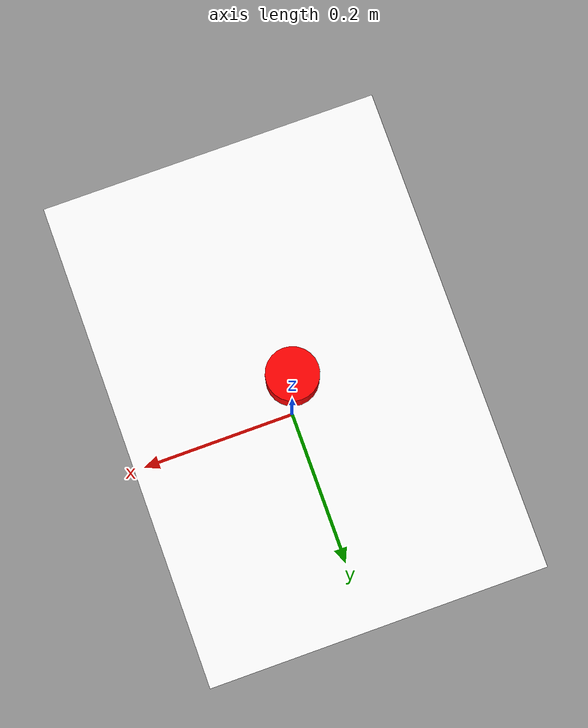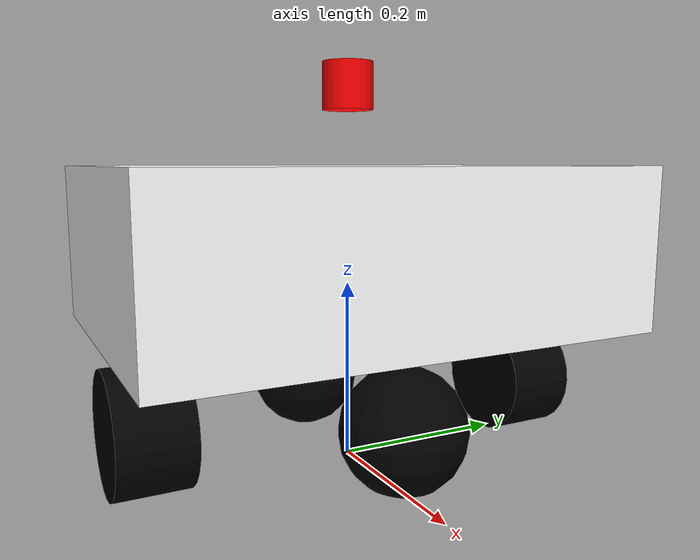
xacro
<?xml version="1.0"?>
<robot xmlns:xacro="http://www.ros.org/wiki/xacro" name="mirs260x">
	<xacro:arg name="nodding" default="false"/>
	<xacro:arg name="wheel_radius" default="0.0665"/>
	<xacro:arg name="wheel_track" default="0.465"/>
	<xacro:arg name="wheel_mu_longitudinal" default="1.0"/>
	<xacro:arg name="wheel_mu_lateral" default="0.2"/>
	<xacro:arg name="caster_mu" default="0.001"/>
	<!-- Define robot constants -->
	<xacro:property name="base_length" value="0.379"/>
	<xacro:property name="base_width" value="0.545"/>
	<xacro:property name="base_height" value="0.178"/>
	<!-- Keep approximately the previous total robot mass after removing six drive wheels. -->
	<xacro:property name="base_mass" value="23.45"/>

	<xacro:property name="wheel_radius" value="${float('$(arg wheel_radius)')}"/>
	<xacro:property name="wheel_track" value="${float('$(arg wheel_track)')}"/>
	<xacro:property name="wheel_mu_longitudinal" value="${float('$(arg wheel_mu_longitudinal)')}"/>
	<xacro:property name="wheel_mu_lateral" value="${float('$(arg wheel_mu_lateral)')}"/>
	<xacro:property name="caster_mu" value="${float('$(arg caster_mu)')}"/>
	<xacro:property name="wheel_width" value="0.08"/>
	<xacro:property name="wheel_zgap" value="0.02"/>
	<xacro:property name="wheel_mass" value="1.425"/>
	<xacro:property name="caster_radius" value="${wheel_radius}"/>

	<xacro:property name="laser_zoff" value="0.06"/>
	<xacro:property name="laser_height" value="0.051"/>
	<xacro:property name="laser_radius" value="0.0278"/>

	<material name="black">
		<color rgba="0 0 0 1"/>
	</material>
	<material name="white">
		<color rgba="1 1 1 1"/>
	</material>
	<material name="red">
		<color rgba="1 0 0 1"/>
	</material>

	<!--==============================================================
		base_footprint: MIRSの前後左右の回転を無視したときの位置（地面）
	==============================================================-->
	<link name="base_footprint"/>

	<!--==============================================================
		base_link: MIRS本体（コンテナ）
	==============================================================-->
	<link name="base_link">
		<visual>
			<geometry>
				<box size="${base_length} ${base_width} ${base_height}"/>
			</geometry>
			<material name="white"/>
			<origin xyz="0 0 0"/>
		</visual>
		<collision>
			<geometry>
				<box size="${base_length} ${base_width} ${base_height}"/>
			</geometry>
		</collision>
		<inertial>
			<mass value="${base_mass}"/>
			<!-- Lump removed wheel mass into the chassis and lower its center of mass. -->
			<origin xyz="0 0 -0.06"/>
			<inertia
				ixx="${base_mass*(base_width*base_width+base_height*base_height)/12.0}"
				ixy="0" ixz="0"
				iyy="${base_mass*(base_length*base_length+base_height*base_height)/12.0}"
				iyz="0"
				izz="${base_mass*(base_length*base_length+base_width*base_width)/12.0}"/>
		</inertial>
	</link>

	<joint name="base_joint" type="fixed">
		<parent link="base_footprint"/>
		<child link="base_link"/>
		<origin xyz="0 0 ${((wheel_radius*2)+wheel_zgap+(base_height/2))}" rpy="0 0 0"/>
	</joint>
	<link name="imu_link">
		<inertial>
			<mass value="0.01"/>
			<inertia ixx="0.00001" ixy="0" ixz="0" iyy="0.00001" iyz="0" izz="0.00001"/>
	</inertial>
	</link>
	<joint name="base_to_imu" type="fixed">
		<parent link="base_link"/>
		<child link="imu_link"/>
		<origin xyz="0 0 0" rpy="0 0 0"/>
	</joint>

	<!-- 2輪差動。wheel_track は左右の駆動輪中心間距離。 -->
	<xacro:macro name="wheel" params="prefix y_reflect">
		<link name="${prefix}_wheel">
			<visual>
				<geometry>
					<cylinder length="${wheel_width}" radius="${wheel_radius}"/>
				</geometry>
				<material name="black"/>
				<origin rpy="${pi/2} 0 0"/>
			</visual>
			<collision>
				<geometry>
					<cylinder length="${wheel_width}" radius="${wheel_radius}"/>
				</geometry>
				<origin rpy="${pi/2} 0 0"/>
			</collision>
			<inertial>
				<mass value="${wheel_mass}"/>
				<!-- Solid cylinder with its spin axis along the link's Y axis. -->
				<inertia
					ixx="${wheel_mass*(3*wheel_radius*wheel_radius+wheel_width*wheel_width)/12.0}"
					ixy="0" ixz="0"
					iyy="${wheel_mass*wheel_radius*wheel_radius/2.0}"
					iyz="0"
					izz="${wheel_mass*(3*wheel_radius*wheel_radius+wheel_width*wheel_width)/12.0}"/>
			</inertial>
		</link>
		<joint name="${prefix}_wheel_joint" type="continuous">
			<parent link="base_link"/>
			<child link="${prefix}_wheel"/>
			<origin xyz="0 ${y_reflect*wheel_track/2} ${-(wheel_radius+wheel_zgap+(base_height/2))}"/>
			<axis xyz="0 1 0"/>
		</joint>
	</xacro:macro>

	<xacro:wheel prefix="left" y_reflect="1"/>
	<xacro:wheel prefix="right" y_reflect="-1"/>

	<!-- 前後の低摩擦支持球で、簡略化した車体を安定させる。 -->
	<xacro:macro name="caster" params="prefix x_position">
		<link name="${prefix}_caster">
			<visual>
				<geometry><sphere radius="${caster_radius}"/></geometry>
				<material name="black"/>
			</visual>
			<collision>
				<geometry><sphere radius="${caster_radius}"/></geometry>
			</collision>
			<inertial>
				<mass value="0.05"/>
				<inertia ixx="0.0001" ixy="0" ixz="0" iyy="0.0001" iyz="0" izz="0.0001"/>
			</inertial>
		</link>
		<joint name="${prefix}_caster_joint" type="fixed">
			<parent link="base_link"/>
			<child link="${prefix}_caster"/>
			<origin xyz="${x_position} 0 ${-(wheel_radius+wheel_zgap+(base_height/2))}"/>
		</joint>
	</xacro:macro>
	<xacro:caster prefix="front" x_position="${base_length/2-caster_radius}"/>
	<xacro:caster prefix="rear" x_position="${-(base_length/2-caster_radius)}"/>

	<!--==============================================================
		laser：LIDAR のフレーム
	==============================================================-->
	<link name="laser">
		<visual>
			<geometry>
				<cylinder length="${laser_height}" radius="${laser_radius}"/>
			</geometry>
			<material name="red"/>
		</visual>
		<collision>
			<geometry>
				<cylinder length="${laser_height}" radius="${laser_radius}"/>
			</geometry>
		</collision>
		<inertial>
			<mass value="0.1"/>
			<inertia ixx="0.0001" ixy="0" ixz="0" iyy="0.0001" iyz="0" izz="0.0001"/>
		</inertial>
	</link>
	<xacro:unless value="$(arg nodding)">
		<joint name="laser_joint" type="fixed">
			<parent link="base_link"/>
			<child link="laser"/>
			<origin xyz="0 0 ${laser_zoff+base_height/2+laser_height/2}" rpy="0 0 0"/>
		</joint>
	</xacro:unless>
	<xacro:if value="$(arg nodding)">
		<!-- 実機と同じ回転軸・センサオフセット: 0.142 + 0.0325 = 0.1745 m -->
		<link name="servo_link"/>
		<joint name="base_to_servo" type="fixed">
			<parent link="base_link"/>
			<child link="servo_link"/>
			<origin xyz="0 0 0.142" rpy="0 0 0"/>
		</joint>
		<link name="nodding_link">
			<inertial>
				<mass value="0.05"/>
				<inertia ixx="0.0001" ixy="0" ixz="0" iyy="0.0001" iyz="0" izz="0.0001"/>
			</inertial>
		</link>
		<joint name="nodding_joint" type="revolute">
			<parent link="servo_link"/>
			<child link="nodding_link"/>
			<origin xyz="0 0 0" rpy="0 0 0"/>
			<axis xyz="0 1 0"/>
			<limit lower="-0.349066" upper="0.349066" effort="10" velocity="1.5"/>
			<dynamics damping="0.1"/>
		</joint>
		<joint name="nodding_to_laser" type="fixed">
			<parent link="nodding_link"/>
			<child link="laser"/>
			<origin xyz="0 0 0.0325" rpy="0 0 0"/>
		</joint>
	</xacro:if>
</robot>
